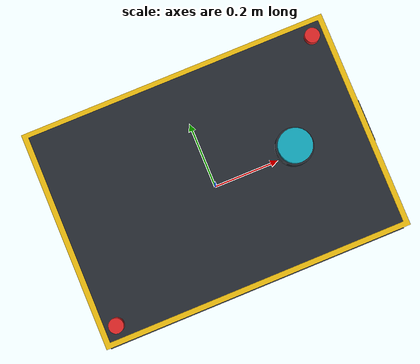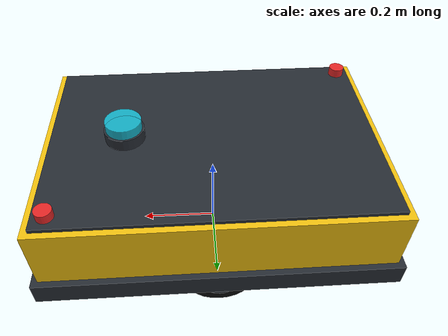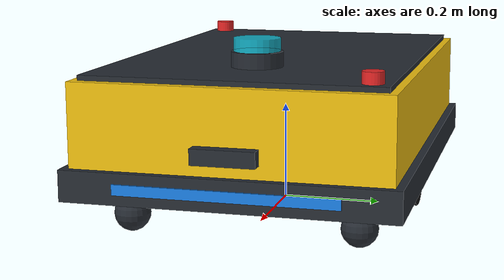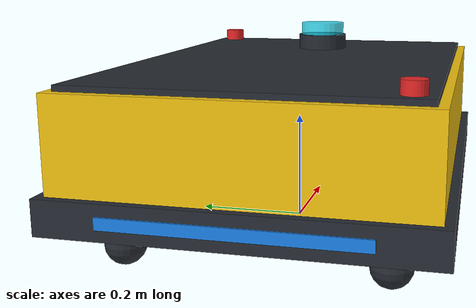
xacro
<?xml version="1.0"?>
<robot name="synapse_amr" xmlns:xacro="http://www.ros.org/wiki/xacro">

  <!-- ================= ARGUMENTS ================= -->
  <xacro:arg name="robot_name" default=""/>

  <xacro:property name="ns" value="$(arg robot_name)"/>
  <xacro:property name="tf_pref" value="${ns + '/' if ns != '' else ''}"/>

  <!-- ================= PROPERTIES ================= -->
  <xacro:property name="PI" value="3.1415926535897931"/>

  <!-- Chassis dimensions -->
  <xacro:property name="chassis_length" value="0.85"/>
  <xacro:property name="chassis_width" value="0.60"/>
  <xacro:property name="chassis_height" value="0.22"/>
  <xacro:property name="chassis_mass" value="45.0"/>

  <!-- Wheel dimensions -->
  <xacro:property name="wheel_radius" value="0.08"/>
  <xacro:property name="wheel_width" value="0.05"/>
  <xacro:property name="wheel_separation" value="0.52"/>
  <xacro:property name="wheel_mass" value="3.0"/>

  <!-- Caster dimensions -->
  <xacro:property name="caster_radius" value="0.035"/>
  <xacro:property name="caster_mass" value="0.8"/>
  <xacro:property name="caster_x_offset" value="0.32"/>
  <xacro:property name="caster_y_offset" value="0.22"/>

  <!-- Inertia macros -->
  <xacro:macro name="box_inertia" params="m w h d">
    <inertial>
      <mass value="${m}"/>
      <inertia ixx="${(m/12) * (h*h + d*d)}" ixy="0.0" ixz="0.0"
               iyy="${(m/12) * (w*w + d*d)}" iyz="0.0"
               izz="${(m/12) * (w*w + h*h)}"/>
    </inertial>
  </xacro:macro>

  <xacro:macro name="cylinder_inertia" params="m r h">
    <inertial>
      <mass value="${m}"/>
      <inertia ixx="${(m/12) * (3*r*r + h*h)}" ixy="0.0" ixz="0.0"
               iyy="${(m/12) * (3*r*r + h*h)}" iyz="0.0"
               izz="${(m/2) * (r*r)}"/>
    </inertial>
  </xacro:macro>

  <xacro:macro name="sphere_inertia" params="m r">
    <inertial>
      <mass value="${m}"/>
      <inertia ixx="${(2/5) * m * (r*r)}" ixy="0.0" ixz="0.0"
               iyy="${(2/5) * m * (r*r)}" iyz="0.0"
               izz="${(2/5) * m * (r*r)}"/>
    </inertial>
  </xacro:macro>

  <!-- ================= COLORS / MATERIALS ================= -->
  <material name="hazard_yellow">
    <color rgba="0.95 0.76 0.06 1.0"/>
  </material>
  <material name="dark_charcoal">
    <color rgba="0.15 0.17 0.20 1.0"/>
  </material>
  <material name="accent_blue">
    <color rgba="0.10 0.50 0.90 1.0"/>
  </material>
  <material name="black_rubber">
    <color rgba="0.05 0.05 0.05 1.0"/>
  </material>
  <material name="emergency_red">
    <color rgba="0.90 0.15 0.15 1.0"/>
  </material>
  <material name="scanner_glass">
    <color rgba="0.10 0.85 0.95 0.8"/>
  </material>

  <!-- ================= BASE FOOTPRINT & BASE LINK ================= -->
  <link name="base_footprint"/>

  <joint name="base_joint" type="fixed">
    <parent link="base_footprint"/>
    <child link="base_link"/>
    <origin xyz="0 0 ${wheel_radius}" rpy="0 0 0"/>
  </joint>

  <link name="base_link">
    <!-- Main lower chassis -->
    <visual>
      <origin xyz="0 0 ${chassis_height/2}" rpy="0 0 0"/>
      <geometry>
        <box size="${chassis_length} ${chassis_width} ${chassis_height}"/>
      </geometry>
      <material name="hazard_yellow"/>
    </visual>
    <!-- Top payload plate -->
    <visual>
      <origin xyz="0 0 ${chassis_height + 0.005}" rpy="0 0 0"/>
      <geometry>
        <box size="${chassis_length * 0.96} ${chassis_width * 0.95} 0.01"/>
      </geometry>
      <material name="dark_charcoal"/>
    </visual>
    <!-- Protective perimeter bumper edge -->
    <visual>
      <origin xyz="0 0 0.03" rpy="0 0 0"/>
      <geometry>
        <box size="${chassis_length + 0.03} ${chassis_width + 0.03} 0.06"/>
      </geometry>
      <material name="dark_charcoal"/>
    </visual>
    <!-- Front status indicator LED bar -->
    <visual>
      <origin xyz="${chassis_length/2 + 0.016} 0 0.03" rpy="0 0 0"/>
      <geometry>
        <box size="0.005 ${chassis_width * 0.7} 0.02"/>
      </geometry>
      <material name="accent_blue"/>
    </visual>
    <!-- Rear status indicator LED bar -->
    <visual>
      <origin xyz="${-chassis_length/2 - 0.016} 0 0.03" rpy="0 0 0"/>
      <geometry>
        <box size="0.005 ${chassis_width * 0.7} 0.02"/>
      </geometry>
      <material name="accent_blue"/>
    </visual>
    <!-- Emergency Stop 1 (Front Left) -->
    <visual>
      <origin xyz="${chassis_length/2 - 0.05} ${chassis_width/2 - 0.05} ${chassis_height + 0.02}" rpy="0 0 0"/>
      <geometry>
        <cylinder radius="0.02" length="0.025"/>
      </geometry>
      <material name="emergency_red"/>
    </visual>
    <!-- Emergency Stop 2 (Rear Right) -->
    <visual>
      <origin xyz="${-chassis_length/2 + 0.05} ${-chassis_width/2 + 0.05} ${chassis_height + 0.02}" rpy="0 0 0"/>
      <geometry>
        <cylinder radius="0.02" length="0.025"/>
      </geometry>
      <material name="emergency_red"/>
    </visual>

    <collision>
      <origin xyz="0 0 ${chassis_height/2}" rpy="0 0 0"/>
      <geometry>
        <box size="${chassis_length} ${chassis_width} ${chassis_height}"/>
      </geometry>
    </collision>

    <xacro:box_inertia m="${chassis_mass}" w="${chassis_width}" h="${chassis_length}" d="${chassis_height}"/>
  </link>

  <gazebo reference="base_link">
    <material>Gazebo/Orange</material>
  </gazebo>

  <!-- ================= DRIVE WHEELS ================= -->
  <xacro:macro name="drive_wheel" params="prefix side y_offset">
    <link name="${prefix}_wheel_link">
      <visual>
        <origin xyz="0 0 0" rpy="${PI/2} 0 0"/>
        <geometry>
          <cylinder radius="${wheel_radius}" length="${wheel_width}"/>
        </geometry>
        <material name="black_rubber"/>
      </visual>
      <!-- Hubcap -->
      <visual>
        <origin xyz="0 ${y_offset * 0.01} 0" rpy="${PI/2} 0 0"/>
        <geometry>
          <cylinder radius="${wheel_radius * 0.5}" length="${wheel_width + 0.002}"/>
        </geometry>
        <material name="dark_charcoal"/>
      </visual>
      <collision>
        <origin xyz="0 0 0" rpy="${PI/2} 0 0"/>
        <geometry>
          <cylinder radius="${wheel_radius}" length="${wheel_width}"/>
        </geometry>
      </collision>
      <xacro:cylinder_inertia m="${wheel_mass}" r="${wheel_radius}" h="${wheel_width}"/>
    </link>

    <joint name="${prefix}_wheel_joint" type="continuous">
      <parent link="base_link"/>
      <child link="${prefix}_wheel_link"/>
      <origin xyz="0 ${side * wheel_separation/2} 0" rpy="0 0 0"/>
      <axis xyz="0 1 0"/>
      <dynamics damping="0.2" friction="0.2"/>
    </joint>

    <gazebo reference="${prefix}_wheel_link">
      <material>Gazebo/DarkGrey</material>
      <mu1>1.2</mu1>
      <mu2>1.2</mu2>
      <kp>1000000.0</kp>
      <kd>100.0</kd>
      <minDepth>0.001</minDepth>
    </gazebo>
  </xacro:macro>

  <xacro:drive_wheel prefix="left" side="1" y_offset="1"/>
  <xacro:drive_wheel prefix="right" side="-1" y_offset="-1"/>

  <!-- ================= 4-CORNER CASTER SUPPORTS ================= -->
  <xacro:macro name="caster_ball" params="prefix x_sign y_sign">
    <link name="${prefix}_caster_link">
      <visual>
        <origin xyz="0 0 0" rpy="0 0 0"/>
        <geometry>
          <sphere radius="${caster_radius}"/>
        </geometry>
        <material name="dark_charcoal"/>
      </visual>
      <collision>
        <origin xyz="0 0 0" rpy="0 0 0"/>
        <geometry>
          <sphere radius="${caster_radius}"/>
        </geometry>
      </collision>
      <xacro:sphere_inertia m="${caster_mass}" r="${caster_radius}"/>
    </link>

    <joint name="${prefix}_caster_joint" type="fixed">
      <parent link="base_link"/>
      <child link="${prefix}_caster_link"/>
      <!-- Wheel radius is 0.08, caster radius is 0.035 -> offset is -(0.08 - 0.035) = -0.045 -->
      <origin xyz="${x_sign * caster_x_offset} ${y_sign * caster_y_offset} ${-(wheel_radius - caster_radius)}" rpy="0 0 0"/>
    </joint>

    <gazebo reference="${prefix}_caster_link">
      <material>Gazebo/Grey</material>
      <mu1>0.001</mu1>
      <mu2>0.001</mu2>
      <kp>1000000.0</kp>
      <kd>10.0</kd>
      <minDepth>0.001</minDepth>
    </gazebo>
  </xacro:macro>

  <xacro:caster_ball prefix="front_left" x_sign="1" y_sign="1"/>
  <xacro:caster_ball prefix="front_right" x_sign="1" y_sign="-1"/>
  <xacro:caster_ball prefix="rear_left" x_sign="-1" y_sign="1"/>
  <xacro:caster_ball prefix="rear_right" x_sign="-1" y_sign="-1"/>

  <!-- ================= 360 LIDAR SENSOR ================= -->
  <link name="lidar_link">
    <visual>
      <origin xyz="0 0 -0.02" rpy="0 0 0"/>
      <geometry>
        <cylinder radius="0.05" length="0.04"/>
      </geometry>
      <material name="dark_charcoal"/>
    </visual>
    <visual>
      <origin xyz="0 0 0.01" rpy="0 0 0"/>
      <geometry>
        <cylinder radius="0.045" length="0.03"/>
      </geometry>
      <material name="scanner_glass"/>
    </visual>
    <collision>
      <origin xyz="0 0 0" rpy="0 0 0"/>
      <geometry>
        <cylinder radius="0.05" length="0.06"/>
      </geometry>
    </collision>
    <xacro:cylinder_inertia m="0.5" r="0.05" h="0.06"/>
  </link>

  <joint name="lidar_joint" type="fixed">
    <parent link="base_link"/>
    <child link="lidar_link"/>
    <!-- Positioned on top deck forward of center for maximum line of sight -->
    <origin xyz="0.22 0 ${chassis_height + 0.04}" rpy="0 0 0"/>
  </joint>

  <gazebo reference="lidar_link">
    <material>Gazebo/DarkGrey</material>
    <sensor name="amr_lidar" type="ray">
      <pose>0 0 0 0 0 0</pose>
      <visualize>false</visualize>
      <update_rate>10</update_rate>
      <ray>
        <scan>
          <horizontal>
            <samples>360</samples>
            <resolution>1</resolution>
            <min_angle>-3.14159265</min_angle>
            <max_angle>3.14159265</max_angle>
          </horizontal>
        </scan>
        <range>
          <min>0.15</min>
          <max>20.0</max>
          <resolution>0.01</resolution>
        </range>
        <noise>
          <type>gaussian</type>
          <mean>0.0</mean>
          <stddev>0.005</stddev>
        </noise>
      </ray>
      <plugin name="amr_laser_controller" filename="libgazebo_ros_ray_sensor.so">
        <ros>
          <namespace>$(arg robot_name)</namespace>
          <argument>~/out:=scan</argument>
        </ros>
        <output_type>sensor_msgs/LaserScan</output_type>
        <frame_name>${tf_pref}lidar_link</frame_name>
      </plugin>
    </sensor>
  </gazebo>

  <!-- ================= FRONT RGB-D / DEPTH CAMERA ================= -->
  <link name="camera_link">
    <visual>
      <origin xyz="0 0 0" rpy="0 0 0"/>
      <geometry>
        <box size="0.03 0.12 0.03"/>
      </geometry>
      <material name="dark_charcoal"/>
    </visual>
    <collision>
      <origin xyz="0 0 0" rpy="0 0 0"/>
      <geometry>
        <box size="0.03 0.12 0.03"/>
      </geometry>
    </collision>
    <xacro:box_inertia m="0.2" w="0.12" h="0.03" d="0.03"/>
  </link>

  <joint name="camera_joint" type="fixed">
    <parent link="base_link"/>
    <child link="camera_link"/>
    <origin xyz="${chassis_length/2 + 0.01} 0 0.10" rpy="0 0 0"/>
  </joint>

  <!-- Optical frame for ROS camera conventions (Z forward, X right, Y down) -->
  <link name="camera_optical_link"/>
  <joint name="camera_optical_joint" type="fixed">
    <parent link="camera_link"/>
    <child link="camera_optical_link"/>
    <origin xyz="0 0 0" rpy="${-PI/2} 0 ${-PI/2}"/>
  </joint>

  <gazebo reference="camera_link">
    <material>Gazebo/Black</material>
    <sensor name="amr_depth_camera" type="depth">
      <update_rate>10</update_rate>
      <camera>
        <horizontal_fov>1.25</horizontal_fov>
        <image>
          <width>320</width>
          <height>240</height>
          <format>R8G8B8</format>
        </image>
        <clip>
          <near>0.1</near>
          <far>8.0</far>
        </clip>
      </camera>
      <plugin name="amr_camera_controller" filename="libgazebo_ros_camera.so">
        <ros>
          <namespace>$(arg robot_name)</namespace>
          <remapping>image_raw:=camera/image_raw</remapping>
          <remapping>depth/image_raw:=camera/depth/image_raw</remapping>
          <remapping>camera_info:=camera/camera_info</remapping>
          <remapping>depth/camera_info:=camera/depth/camera_info</remapping>
          <remapping>points:=camera/points</remapping>
        </ros>
        <camera_name>camera</camera_name>
        <frame_name>${tf_pref}camera_optical_link</frame_name>
        <min_depth>0.1</min_depth>
        <max_depth>8.0</max_depth>
      </plugin>
    </sensor>
  </gazebo>

  <!-- ================= IMU SENSOR ================= -->
  <link name="imu_link">
    <xacro:box_inertia m="0.05" w="0.02" h="0.02" d="0.01"/>
  </link>

  <joint name="imu_joint" type="fixed">
    <parent link="base_link"/>
    <child link="imu_link"/>
    <origin xyz="0 0 0.05" rpy="0 0 0"/>
  </joint>

  <gazebo reference="imu_link">
    <sensor name="amr_imu" type="imu">
      <always_on>true</always_on>
      <update_rate>50</update_rate>
      <plugin name="amr_imu_plugin" filename="libgazebo_ros_imu_sensor.so">
        <ros>
          <namespace>$(arg robot_name)</namespace>
          <remapping>~/out:=imu/data</remapping>
        </ros>
        <initial_orientation_as_reference>false</initial_orientation_as_reference>
        <frame_name>${tf_pref}imu_link</frame_name>
      </plugin>
    </sensor>
  </gazebo>

  <!-- ================= DIFFERENTIAL DRIVE CONTROLLER PLUGIN ================= -->
  <gazebo>
    <plugin name="amr_diff_drive" filename="libgazebo_ros_diff_drive.so">
      <ros>
        <namespace>$(arg robot_name)</namespace>
        <remapping>cmd_vel:=cmd_vel</remapping>
        <remapping>odom:=odom</remapping>
      </ros>

      <!-- Wheels -->
      <left_joint>left_wheel_joint</left_joint>
      <right_joint>right_wheel_joint</right_joint>

      <!-- Kinematics -->
      <wheel_separation>${wheel_separation}</wheel_separation>
      <wheel_diameter>${2 * wheel_radius}</wheel_diameter>

      <!-- Limits -->
      <max_wheel_torque>60</max_wheel_torque>
      <max_wheel_acceleration>3.5</max_wheel_acceleration>

      <!-- Output -->
      <publish_odom>true</publish_odom>
      <publish_odom_tf>true</publish_odom_tf>
      <publish_wheel_tf>true</publish_wheel_tf>

      <odometry_frame>${tf_pref}odom</odometry_frame>
      <robot_base_frame>${tf_pref}base_footprint</robot_base_frame>
    </plugin>
  </gazebo>

</robot>
